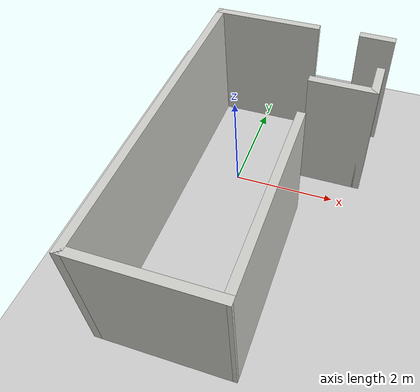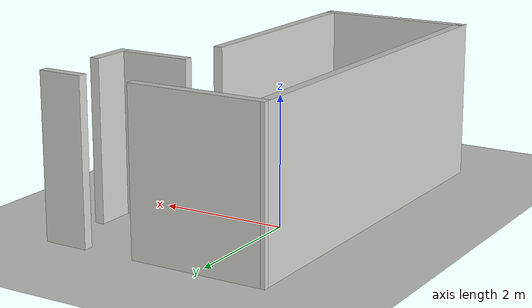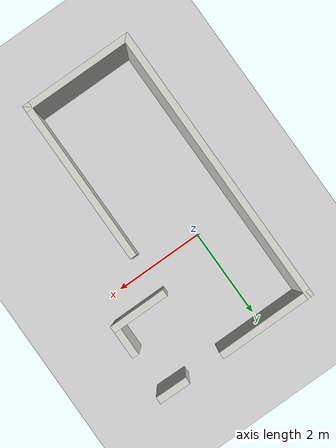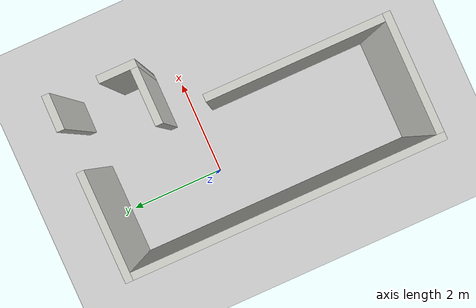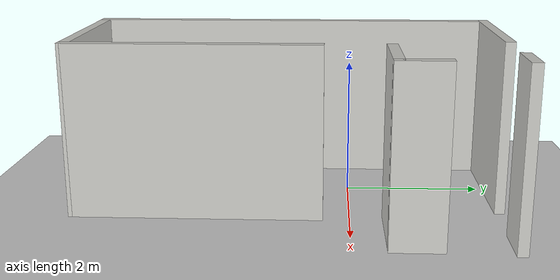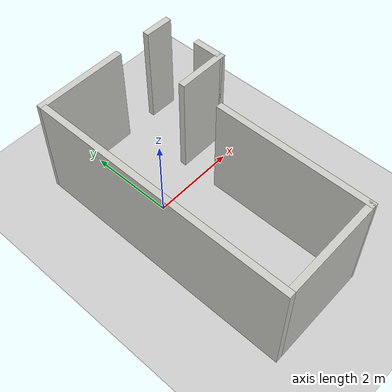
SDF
<sdf version="1.6">
 <world name="default">
  <light name="sun" type="directional">
   <pose>0 0 10 0 -0 0</pose>
   <diffuse>0.8 0.8 0.8 1</diffuse>
   <specular>0.2 0.2 0.2 1</specular>
   <attenuation>
    <range>1000</range>
    <constant>0.9</constant>
    <linear>0.01</linear>
    <quadratic>0.001</quadratic>
   </attenuation>
   <direction>-0.5 0.1 -0.9</direction>
  </light>
  <model name="ground_plane">
   <static>1</static>
   <link name="link">
    <collision name="collision">
     <geometry><plane><normal>0 0 1</normal><size>100 100</size></plane></geometry>
     <surface>
      <contact><collide_bitmask>65535</collide_bitmask></contact>
      <friction><ode><mu>100</mu><mu2>50</mu2></ode></friction>
     </surface>
    </collision>
    <visual name="visual">
     <cast_shadows>0</cast_shadows>
     <geometry><plane><normal>0 0 1</normal><size>100 100</size></plane></geometry>
     <material>
      <script><uri>file://media/materials/scripts/gazebo.material</uri><name>Gazebo/Grey</name></script>
     </material>
    </visual>
   </link>
  </model>
  <gravity>0 0 -9.8</gravity>
  <magnetic_field>6e-06 2.3e-05 -4.2e-05</magnetic_field>
  <atmosphere type="adiabatic"/>
  <physics name="default_physics" default="0" type="ode">
   <max_step_size>0.001</max_step_size>
   <real_time_factor>1</real_time_factor>
   <real_time_update_rate>1000</real_time_update_rate>
  </physics>
  <scene><ambient>0.4 0.4 0.4 1</ambient><background>0.7 0.7 0.7 1</background><shadows>1</shadows></scene>
  <audio><device>default</device></audio>
  <spherical_coordinates>
   <surface_model>EARTH_WGS84</surface_model>
   <latitude_deg>0</latitude_deg>
   <longitude_deg>0</longitude_deg>
   <elevation>0</elevation>
   <heading_deg>0</heading_deg>
  </spherical_coordinates>
  <model name="HK">
   <pose>0.711542 -0.880638 0 0 -0 0</pose>
   <link name="Wall_14">
    <collision name="Wall_14_Collision">
     <geometry><box><size>0.75 0.15 2.5</size></box></geometry>
     <pose>0 0 1.25 0 -0 0</pose>
    </collision>
    <visual name="Wall_14_Visual">
     <pose>0 0 1.25 0 -0 0</pose>
     <geometry><box><size>0.75 0.15 2.5</size></box></geometry>
     <material>
      <script><uri>file://media/materials/scripts/gazebo.material</uri><name>Gazebo/CeilingTiled</name></script>
      <ambient>1 1 1 1</ambient>
     </material>
     <meta><layer>0</layer></meta>
    </visual>
    <pose>1.67901 1.71972 0 0 -0 1.5708</pose>
   </link>
   <link name="Wall_16">
    <collision name="Wall_16_Collision">
     <geometry><box><size>2.14389 0.15 2.5</size></box></geometry>
     <pose>0 0 1.25 0 -0 0</pose>
    </collision>
    <visual name="Wall_16_Visual">
     <pose>0 0 1.25 0 -0 0</pose>
     <geometry><box><size>2.14389 0.15 2.5</size></box></geometry>
     <material>
      <script><uri>file://media/materials/scripts/gazebo.material</uri><name>Gazebo/CeilingTiled</name></script>
      <ambient>1 1 1 1</ambient>
     </material>
     <meta><layer>0</layer></meta>
    </visual>
    <pose>-0.748372 3.04507 0 0 -0 0.00074</pose>
   </link>
   <link name="Wall_18">
    <collision name="Wall_18_Collision">
     <geometry><box><size>0.697826 0.15 2.5</size></box></geometry>
     <pose>0 0 1.25 0 -0 0</pose>
    </collision>
    <visual name="Wall_18_Visual">
     <pose>0 0 1.25 0 -0 0</pose>
     <geometry><box><size>0.697826 0.15 2.5</size></box></geometry>
     <material>
      <script><uri>file://media/materials/scripts/gazebo.material</uri><name>Gazebo/CeilingTiled</name></script>
      <ambient>1 1 1 1</ambient>
     </material>
     <meta><layer>0</layer></meta>
    </visual>
    <pose>1.47031 3.05015 0 0 -0 3.12572</pose>
   </link>
   <link name="Wall_2">
    <collision name="Wall_2_Collision">
     <geometry><box><size>6.25 0.15 2.5</size></box></geometry>
     <pose>0 0 1.25 0 -0 0</pose>
    </collision>
    <visual name="Wall_2_Visual">
     <pose>0 0 1.25 0 -0 0</pose>
     <geometry><box><size>6.25 0.15 2.5</size></box></geometry>
     <material>
      <script><uri>file://media/materials/scripts/gazebo.material</uri><name>Gazebo/CeilingTiled</name></script>
      <ambient>1 1 1 1</ambient>
     </material>
     <meta><layer>0</layer></meta>
    </visual>
    <pose>-1.74532 -0.005671 0 0 -0 -1.5708</pose>
   </link>
   <link name="Wall_3">
    <collision name="Wall_3_Collision">
     <geometry><box><size>2.5 0.15 2.5</size></box></geometry>
     <pose>0 0 1.25 0 -0 0</pose>
    </collision>
    <visual name="Wall_3_Visual">
     <pose>0 0 1.25 0 -0 0</pose>
     <geometry><box><size>2.5 0.15 2.5</size></box></geometry>
     <material>
      <script><uri>file://media/materials/scripts/gazebo.material</uri><name>Gazebo/CeilingTiled</name></script>
      <ambient>1 1 1 1</ambient>
     </material>
     <meta><layer>0</layer></meta>
    </visual>
    <pose>-0.570316 -3.05567 0 0 -0 0</pose>
   </link>
   <link name="Wall_4">
    <collision name="Wall_4_Collision">
     <geometry><box><size>3.63408 0.15 2.5</size></box></geometry>
     <pose>0 0 1.25 0 -0 0</pose>
    </collision>
    <visual name="Wall_4_Visual">
     <pose>0 0 1.25 0 -0 0</pose>
     <geometry><box><size>3.63408 0.15 2.5</size></box></geometry>
     <material>
      <script><uri>file://media/materials/scripts/gazebo.material</uri><name>Gazebo/CeilingTiled</name></script>
      <ambient>1 1 1 1</ambient>
     </material>
     <meta><layer>0</layer></meta>
    </visual>
    <pose>0.604889 -1.31363 0 0 -0 1.57068</pose>
   </link>
   <link name="Wall_6">
    <collision name="Wall_6_Collision">
     <geometry><box><size>1.25 0.15 2.5</size></box></geometry>
     <pose>0 0 1.25 0 -0 0</pose>
    </collision>
    <visual name="Wall_6_Visual">
     <pose>0 0 1.25 0 -0 0</pose>
     <geometry><box><size>1.25 0.15 2.5</size></box></geometry>
     <material>
      <script><uri>file://media/materials/scripts/gazebo.material</uri><name>Gazebo/CeilingTiled</name></script>
      <ambient>1 1 1 1</ambient>
     </material>
     <meta><layer>0</layer></meta>
    </visual>
    <pose>1.12901 1.41972 0 0 -0 0</pose>
   </link>
   <static>1</static>
  </model>
 </world>
</sdf>
